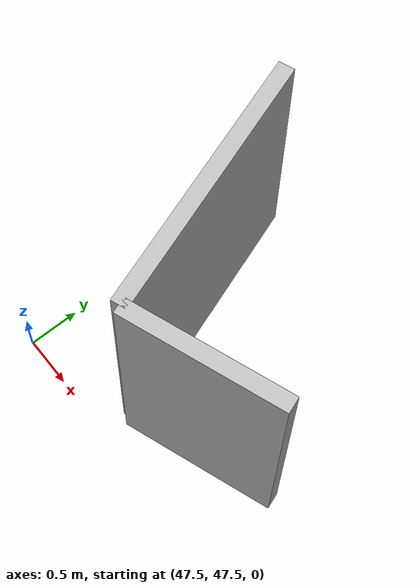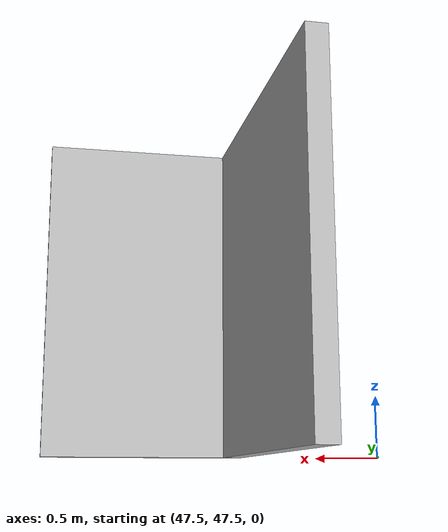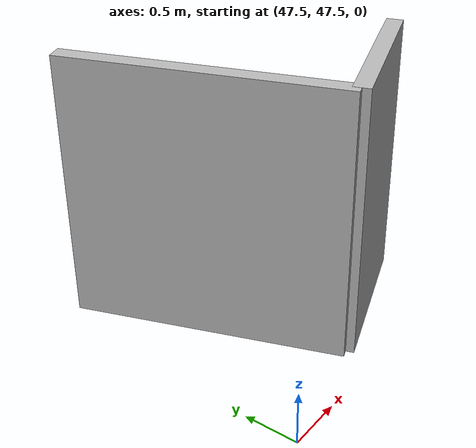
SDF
<?xml version="1.0" ?>
<sdf version="1.6">
  <model name="sps_4432">
    <pose frame="">0 0 0 0 -0 0</pose>
    <static>1</static>
    <self_collide>0</self_collide>
    <allow_auto_disable>0</allow_auto_disable>
    <link name="Wall651">
      <kinematic>0</kinematic>
      <gravity>1</gravity>
      <self_collide>0</self_collide>
      <collision name="collision">
        <geometry>
          <box>
            <size>2.50062 0.15 2.5</size>
          </box>
        </geometry>
        <pose frame="">0 0 0 0 -0 0</pose>
      </collision>
      <visual name="visual">
        <geometry>
          <box>
            <size>2.50062 0.15 2.5</size>
          </box>
        </geometry>
        <pose frame="">0 0 0 0 -0 0</pose>
        <cast_shadows>1</cast_shadows>
        <transparency>0.0</transparency>
      </visual>
      <pose frame="">48.2418 48.9508 1.25 0 0 -1.22644</pose>
    </link>
    <link name="Wall652">
      <kinematic>0</kinematic>
      <gravity>1</gravity>
      <self_collide>0</self_collide>
      <collision name="collision">
        <geometry>
          <box>
            <size>1.49967 0.15 2.5</size>
          </box>
        </geometry>
        <pose frame="">0 0 0 0 -0 0</pose>
      </collision>
      <visual name="visual">
        <geometry>
          <box>
            <size>1.49967 0.15 2.5</size>
          </box>
        </geometry>
        <pose frame="">0 0 0 0 -0 0</pose>
        <cast_shadows>1</cast_shadows>
        <transparency>0.0</transparency>
      </visual>
      <pose frame="">49.3697 48.0268 1.25 0 -0 0.344018</pose>
    </link>
  </model>
</sdf>
